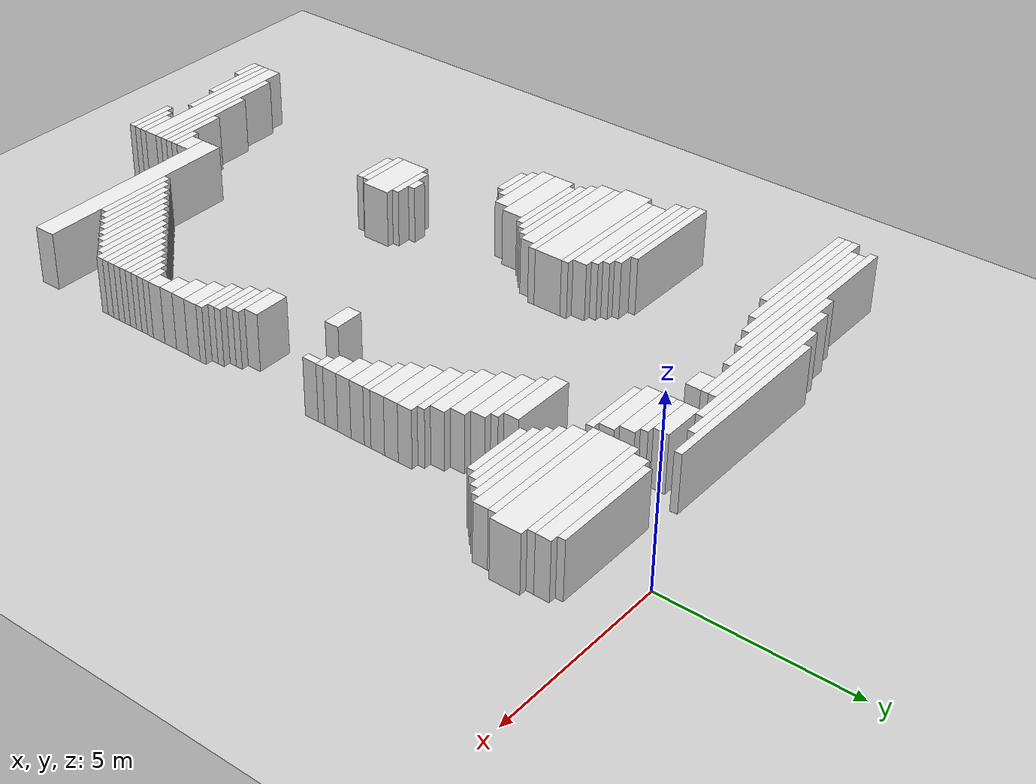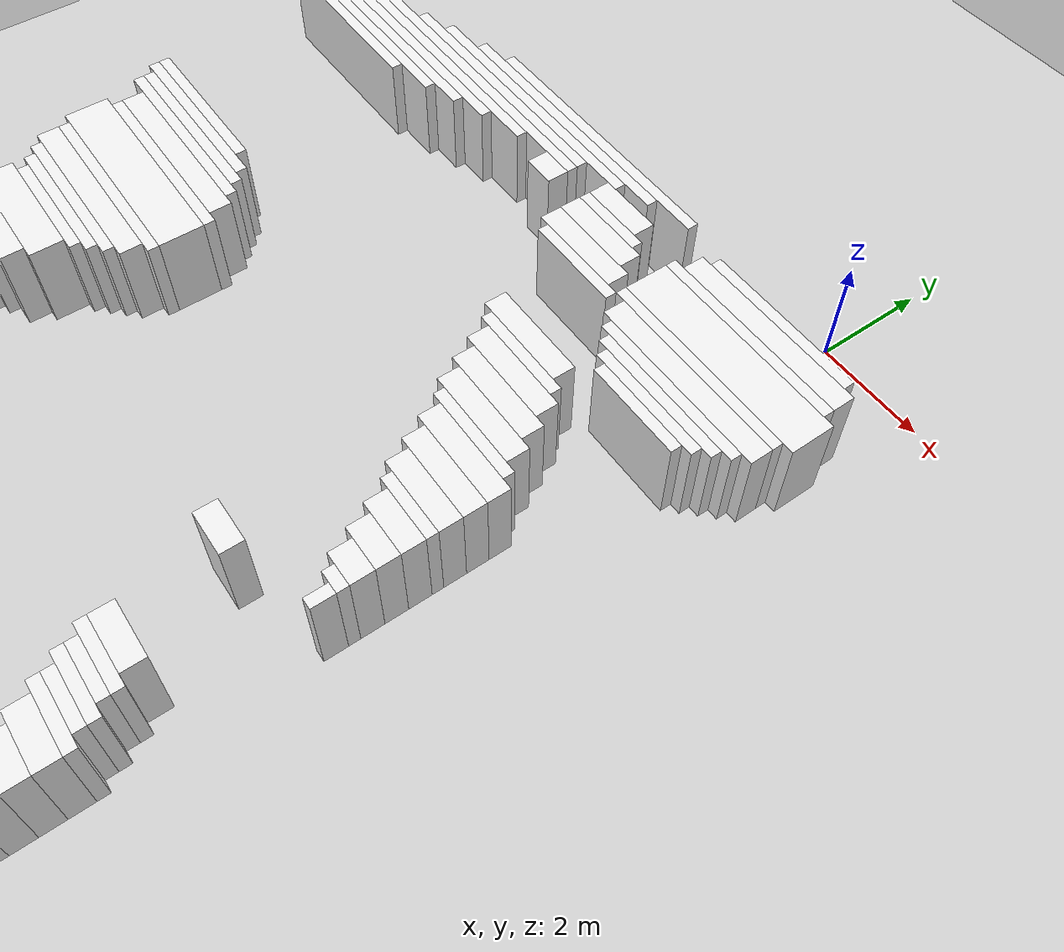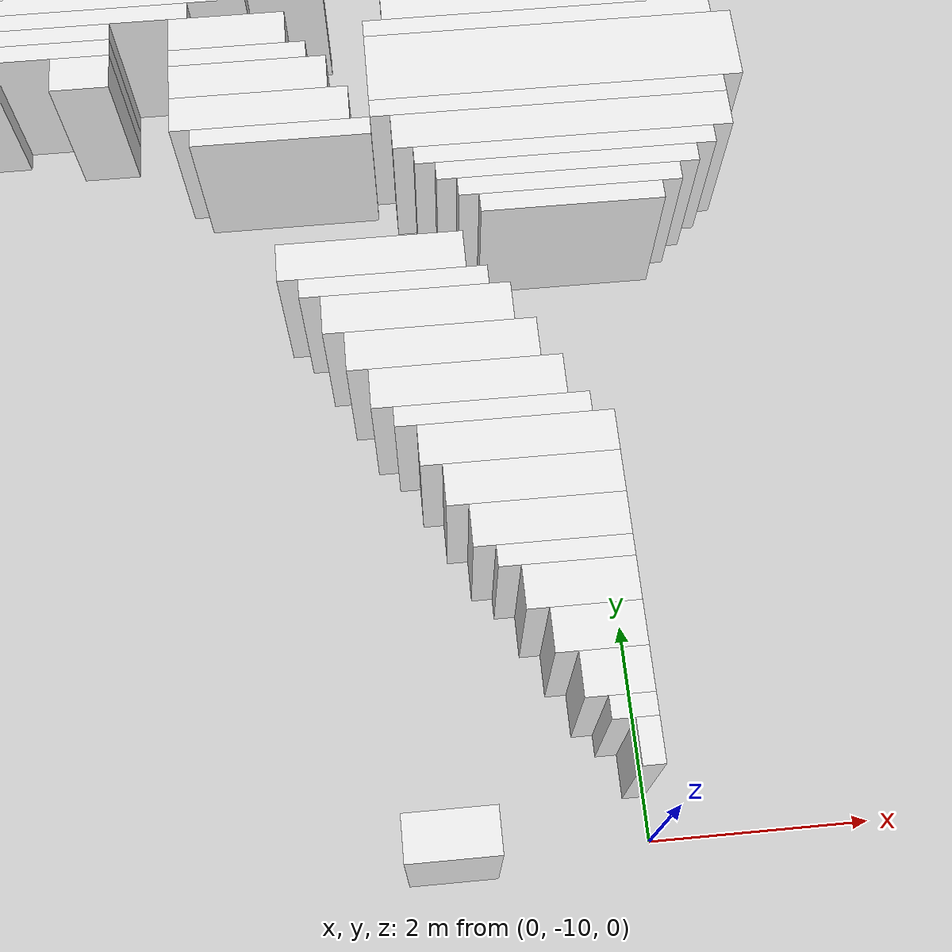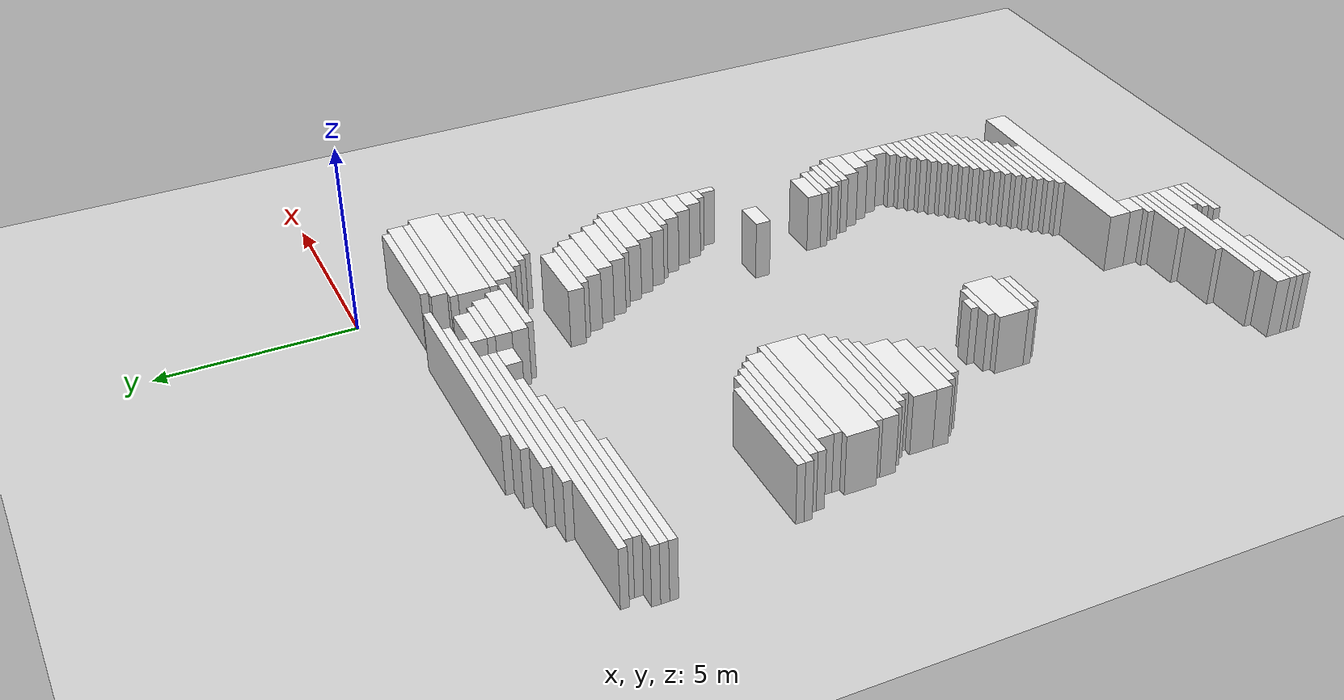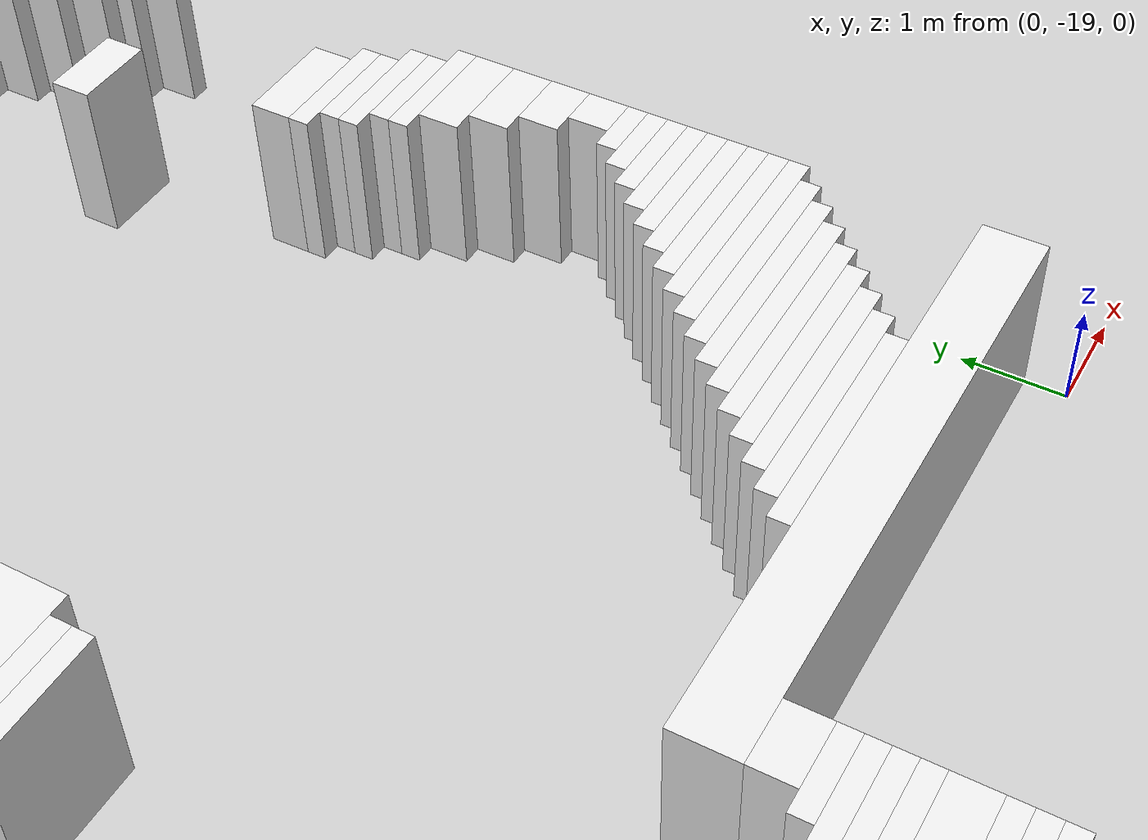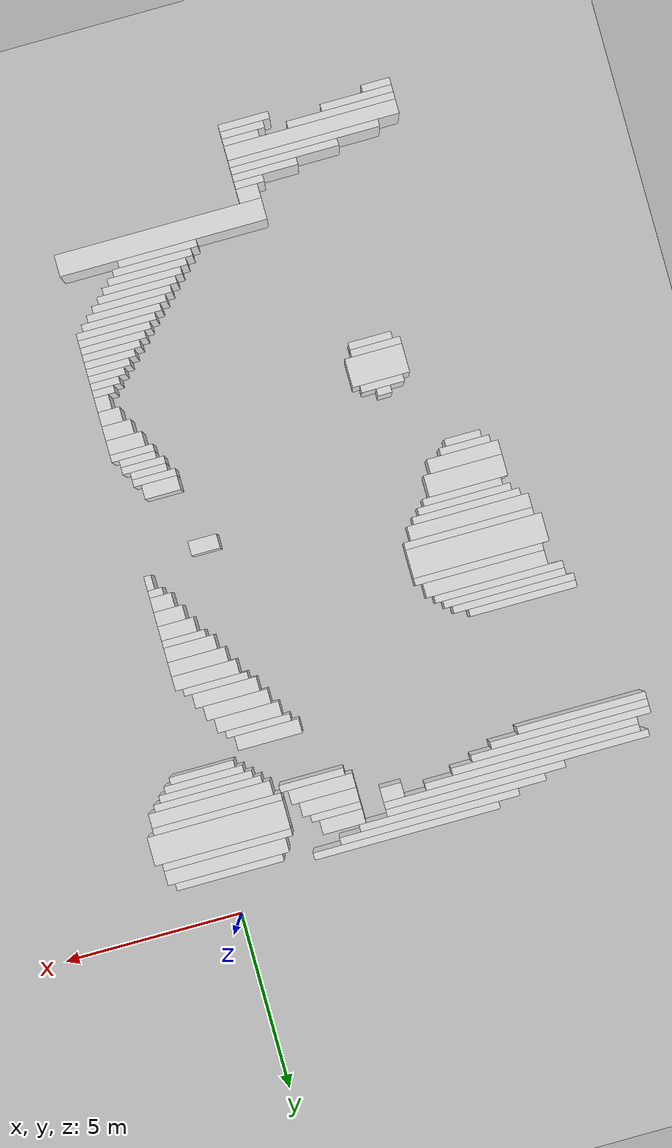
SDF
<sdf version="1.7">
 <world name="default">
  <model name="ground_plane">
   <static>1</static>
   <link name="link">
    <collision name="collision">
     <geometry><plane><normal>0 0 1</normal><size>120 120</size></plane></geometry>
    </collision>
    <visual name="visual">
     <geometry><plane><normal>0 0 1</normal><size>120 120</size></plane></geometry>
     <material>
      <script><uri>file://media/materials/scripts/gazebo.material</uri><name>Gazebo/Grey</name></script>
     </material>
    </visual>
   </link>
  </model>
  <model name="random_complex_03_model">
   <static>1</static>
   <link name="obs_1678">
    <pose>-5.0000 -1.1000 0.8000 0 0 0</pose>
    <collision name="obs_1678_col"><geometry><box><size>5.2000 0.2000 1.6000</size></box></geometry></collision>
    <visual name="obs_1678_vis">
     <geometry><box><size>5.2000 0.2000 1.6000</size></box></geometry>
     <material>
      <script><uri>file://media/materials/scripts/gazebo.material</uri><name>Gazebo/White</name></script>
     </material>
    </visual>
   </link>
   <link name="obs_1687">
    <pose>-5.7000 -1.3000 0.8000 0 0 0</pose>
    <collision name="obs_1687_col"><geometry><box><size>5.0000 0.2000 1.6000</size></box></geometry></collision>
    <visual name="obs_1687_vis">
     <geometry><box><size>5.0000 0.2000 1.6000</size></box></geometry>
     <material>
      <script><uri>file://media/materials/scripts/gazebo.material</uri><name>Gazebo/White</name></script>
     </material>
    </visual>
   </link>
   <link name="obs_1688">
    <pose>-0.1000 -1.3000 0.8000 0 0 0</pose>
    <collision name="obs_1688_col"><geometry><box><size>3.0000 0.2000 1.6000</size></box></geometry></collision>
    <visual name="obs_1688_vis">
     <geometry><box><size>3.0000 0.2000 1.6000</size></box></geometry>
     <material>
      <script><uri>file://media/materials/scripts/gazebo.material</uri><name>Gazebo/White</name></script>
     </material>
    </visual>
   </link>
   <link name="obs_1699">
    <pose>-6.4000 -1.5000 0.8000 0 0 0</pose>
    <collision name="obs_1699_col"><geometry><box><size>5.2000 0.2000 1.6000</size></box></geometry></collision>
    <visual name="obs_1699_vis">
     <geometry><box><size>5.2000 0.2000 1.6000</size></box></geometry>
     <material>
      <script><uri>file://media/materials/scripts/gazebo.material</uri><name>Gazebo/White</name></script>
     </material>
    </visual>
   </link>
   <link name="obs_1705">
    <pose>-0.1000 -1.6000 0.8000 0 0 0</pose>
    <collision name="obs_1705_col"><geometry><box><size>3.4000 0.4000 1.6000</size></box></geometry></collision>
    <visual name="obs_1705_vis">
     <geometry><box><size>3.4000 0.4000 1.6000</size></box></geometry>
     <material>
      <script><uri>file://media/materials/scripts/gazebo.material</uri><name>Gazebo/White</name></script>
     </material>
    </visual>
   </link>
   <link name="obs_1709">
    <pose>-7.1000 -1.7000 0.8000 0 0 0</pose>
    <collision name="obs_1709_col"><geometry><box><size>5.0000 0.2000 1.6000</size></box></geometry></collision>
    <visual name="obs_1709_vis">
     <geometry><box><size>5.0000 0.2000 1.6000</size></box></geometry>
     <material>
      <script><uri>file://media/materials/scripts/gazebo.material</uri><name>Gazebo/White</name></script>
     </material>
    </visual>
   </link>
   <link name="obs_1712">
    <pose>-3.4000 -1.8000 0.8000 0 0 0</pose>
    <collision name="obs_1712_col"><geometry><box><size>1.2000 0.4000 1.6000</size></box></geometry></collision>
    <visual name="obs_1712_vis">
     <geometry><box><size>1.2000 0.4000 1.6000</size></box></geometry>
     <material>
      <script><uri>file://media/materials/scripts/gazebo.material</uri><name>Gazebo/White</name></script>
     </material>
    </visual>
   </link>
   <link name="obs_1716">
    <pose>-8.3000 -1.9000 0.8000 0 0 0</pose>
    <collision name="obs_1716_col"><geometry><box><size>7.4000 0.2000 1.6000</size></box></geometry></collision>
    <visual name="obs_1716_vis">
     <geometry><box><size>7.4000 0.2000 1.6000</size></box></geometry>
     <material>
      <script><uri>file://media/materials/scripts/gazebo.material</uri><name>Gazebo/White</name></script>
     </material>
    </visual>
   </link>
   <link name="obs_1717">
    <pose>-0.2000 -1.9000 0.8000 0 0 0</pose>
    <collision name="obs_1717_col"><geometry><box><size>3.6000 0.2000 1.6000</size></box></geometry></collision>
    <visual name="obs_1717_vis">
     <geometry><box><size>3.6000 0.2000 1.6000</size></box></geometry>
     <material>
      <script><uri>file://media/materials/scripts/gazebo.material</uri><name>Gazebo/White</name></script>
     </material>
    </visual>
   </link>
   <link name="obs_1725">
    <pose>-8.8000 -2.1000 0.8000 0 0 0</pose>
    <collision name="obs_1725_col"><geometry><box><size>6.0000 0.2000 1.6000</size></box></geometry></collision>
    <visual name="obs_1725_vis">
     <geometry><box><size>6.0000 0.2000 1.6000</size></box></geometry>
     <material>
      <script><uri>file://media/materials/scripts/gazebo.material</uri><name>Gazebo/White</name></script>
     </material>
    </visual>
   </link>
   <link name="obs_1726">
    <pose>-3.3000 -2.1000 0.8000 0 0 0</pose>
    <collision name="obs_1726_col"><geometry><box><size>1.4000 0.2000 1.6000</size></box></geometry></collision>
    <visual name="obs_1726_vis">
     <geometry><box><size>1.4000 0.2000 1.6000</size></box></geometry>
     <material>
      <script><uri>file://media/materials/scripts/gazebo.material</uri><name>Gazebo/White</name></script>
     </material>
    </visual>
   </link>
   <link name="obs_1731">
    <pose>-4.9000 -2.2000 0.8000 0 0 0</pose>
    <collision name="obs_1731_col"><geometry><box><size>0.6000 0.4000 1.6000</size></box></geometry></collision>
    <visual name="obs_1731_vis">
     <geometry><box><size>0.6000 0.4000 1.6000</size></box></geometry>
     <material>
      <script><uri>file://media/materials/scripts/gazebo.material</uri><name>Gazebo/White</name></script>
     </material>
    </visual>
   </link>
   <link name="obs_1735">
    <pose>-9.2000 -2.3000 0.8000 0 0 0</pose>
    <collision name="obs_1735_col"><geometry><box><size>5.2000 0.2000 1.6000</size></box></geometry></collision>
    <visual name="obs_1735_vis">
     <geometry><box><size>5.2000 0.2000 1.6000</size></box></geometry>
     <material>
      <script><uri>file://media/materials/scripts/gazebo.material</uri><name>Gazebo/White</name></script>
     </material>
    </visual>
   </link>
   <link name="obs_1741">
    <pose>-3.2000 -2.4000 0.8000 0 0 0</pose>
    <collision name="obs_1741_col"><geometry><box><size>1.6000 0.4000 1.6000</size></box></geometry></collision>
    <visual name="obs_1741_vis">
     <geometry><box><size>1.6000 0.4000 1.6000</size></box></geometry>
     <material>
      <script><uri>file://media/materials/scripts/gazebo.material</uri><name>Gazebo/White</name></script>
     </material>
    </visual>
   </link>
   <link name="obs_1744">
    <pose>-9.7000 -2.5000 0.8000 0 0 0</pose>
    <collision name="obs_1744_col"><geometry><box><size>5.0000 0.2000 1.6000</size></box></geometry></collision>
    <visual name="obs_1744_vis">
     <geometry><box><size>5.0000 0.2000 1.6000</size></box></geometry>
     <material>
      <script><uri>file://media/materials/scripts/gazebo.material</uri><name>Gazebo/White</name></script>
     </material>
    </visual>
   </link>
   <link name="obs_1749">
    <pose>-0.1000 -2.4000 0.8000 0 0 0</pose>
    <collision name="obs_1749_col"><geometry><box><size>3.8000 0.8000 1.6000</size></box></geometry></collision>
    <visual name="obs_1749_vis">
     <geometry><box><size>3.8000 0.8000 1.6000</size></box></geometry>
     <material>
      <script><uri>file://media/materials/scripts/gazebo.material</uri><name>Gazebo/White</name></script>
     </material>
    </visual>
   </link>
   <link name="obs_1752">
    <pose>-10.0000 -2.7000 0.8000 0 0 0</pose>
    <collision name="obs_1752_col"><geometry><box><size>4.4000 0.2000 1.6000</size></box></geometry></collision>
    <visual name="obs_1752_vis">
     <geometry><box><size>4.4000 0.2000 1.6000</size></box></geometry>
     <material>
      <script><uri>file://media/materials/scripts/gazebo.material</uri><name>Gazebo/White</name></script>
     </material>
    </visual>
   </link>
   <link name="obs_1757">
    <pose>-3.1000 -2.8000 0.8000 0 0 0</pose>
    <collision name="obs_1757_col"><geometry><box><size>1.8000 0.4000 1.6000</size></box></geometry></collision>
    <visual name="obs_1757_vis">
     <geometry><box><size>1.8000 0.4000 1.6000</size></box></geometry>
     <material>
      <script><uri>file://media/materials/scripts/gazebo.material</uri><name>Gazebo/White</name></script>
     </material>
    </visual>
   </link>
   <link name="obs_1760">
    <pose>-10.4000 -2.9000 0.8000 0 0 0</pose>
    <collision name="obs_1760_col"><geometry><box><size>3.6000 0.2000 1.6000</size></box></geometry></collision>
    <visual name="obs_1760_vis">
     <geometry><box><size>3.6000 0.2000 1.6000</size></box></geometry>
     <material>
      <script><uri>file://media/materials/scripts/gazebo.material</uri><name>Gazebo/White</name></script>
     </material>
    </visual>
   </link>
   <link name="obs_1761">
    <pose>-0.2000 -2.9000 0.8000 0 0 0</pose>
    <collision name="obs_1761_col"><geometry><box><size>3.6000 0.2000 1.6000</size></box></geometry></collision>
    <visual name="obs_1761_vis">
     <geometry><box><size>3.6000 0.2000 1.6000</size></box></geometry>
     <material>
      <script><uri>file://media/materials/scripts/gazebo.material</uri><name>Gazebo/White</name></script>
     </material>
    </visual>
   </link>
   <link name="obs_1770">
    <pose>-2.9000 -3.1000 0.8000 0 0 0</pose>
    <collision name="obs_1770_col"><geometry><box><size>1.8000 0.2000 1.6000</size></box></geometry></collision>
    <visual name="obs_1770_vis">
     <geometry><box><size>1.8000 0.2000 1.6000</size></box></geometry>
     <material>
      <script><uri>file://media/materials/scripts/gazebo.material</uri><name>Gazebo/White</name></script>
     </material>
    </visual>
   </link>
   <link name="obs_1773">
    <pose>-0.1000 -3.2000 0.8000 0 0 0</pose>
    <collision name="obs_1773_col"><geometry><box><size>3.4000 0.4000 1.6000</size></box></geometry></collision>
    <visual name="obs_1773_vis">
     <geometry><box><size>3.4000 0.4000 1.6000</size></box></geometry>
     <material>
      <script><uri>file://media/materials/scripts/gazebo.material</uri><name>Gazebo/White</name></script>
     </material>
    </visual>
   </link>
   <link name="obs_1776">
    <pose>-0.1000 -3.5000 0.8000 0 0 0</pose>
    <collision name="obs_1776_col"><geometry><box><size>3.0000 0.2000 1.6000</size></box></geometry></collision>
    <visual name="obs_1776_vis">
     <geometry><box><size>3.0000 0.2000 1.6000</size></box></geometry>
     <material>
      <script><uri>file://media/materials/scripts/gazebo.material</uri><name>Gazebo/White</name></script>
     </material>
    </visual>
   </link>
   <link name="obs_1777">
    <pose>-0.1000 -3.7000 0.8000 0 0 0</pose>
    <collision name="obs_1777_col"><geometry><box><size>2.6000 0.2000 1.6000</size></box></geometry></collision>
    <visual name="obs_1777_vis">
     <geometry><box><size>2.6000 0.2000 1.6000</size></box></geometry>
     <material>
      <script><uri>file://media/materials/scripts/gazebo.material</uri><name>Gazebo/White</name></script>
     </material>
    </visual>
   </link>
   <link name="obs_1782">
    <pose>-0.1000 -3.9000 0.8000 0 0 0</pose>
    <collision name="obs_1782_col"><geometry><box><size>2.2000 0.2000 1.6000</size></box></geometry></collision>
    <visual name="obs_1782_vis">
     <geometry><box><size>2.2000 0.2000 1.6000</size></box></geometry>
     <material>
      <script><uri>file://media/materials/scripts/gazebo.material</uri><name>Gazebo/White</name></script>
     </material>
    </visual>
   </link>
   <link name="obs_1785">
    <pose>-0.1000 -4.1000 0.8000 0 0 0</pose>
    <collision name="obs_1785_col"><geometry><box><size>1.8000 0.2000 1.6000</size></box></geometry></collision>
    <visual name="obs_1785_vis">
     <geometry><box><size>1.8000 0.2000 1.6000</size></box></geometry>
     <material>
      <script><uri>file://media/materials/scripts/gazebo.material</uri><name>Gazebo/White</name></script>
     </material>
    </visual>
   </link>
   <link name="obs_1798">
    <pose>-2.1000 -4.6000 0.8000 0 0 0</pose>
    <collision name="obs_1798_col"><geometry><box><size>1.8000 0.4000 1.6000</size></box></geometry></collision>
    <visual name="obs_1798_vis">
     <geometry><box><size>1.8000 0.4000 1.6000</size></box></geometry>
     <material>
      <script><uri>file://media/materials/scripts/gazebo.material</uri><name>Gazebo/White</name></script>
     </material>
    </visual>
   </link>
   <link name="obs_1808">
    <pose>-1.9000 -4.9000 0.8000 0 0 0</pose>
    <collision name="obs_1808_col"><geometry><box><size>1.8000 0.2000 1.6000</size></box></geometry></collision>
    <visual name="obs_1808_vis">
     <geometry><box><size>1.8000 0.2000 1.6000</size></box></geometry>
     <material>
      <script><uri>file://media/materials/scripts/gazebo.material</uri><name>Gazebo/White</name></script>
     </material>
    </visual>
   </link>
   <link name="obs_1816">
    <pose>-1.7000 -5.2000 0.8000 0 0 0</pose>
    <collision name="obs_1816_col"><geometry><box><size>1.8000 0.4000 1.6000</size></box></geometry></collision>
    <visual name="obs_1816_vis">
     <geometry><box><size>1.8000 0.4000 1.6000</size></box></geometry>
     <material>
      <script><uri>file://media/materials/scripts/gazebo.material</uri><name>Gazebo/White</name></script>
     </material>
    </visual>
   </link>
   <link name="obs_1825">
    <pose>-1.5000 -5.6000 0.8000 0 0 0</pose>
    <collision name="obs_1825_col"><geometry><box><size>1.8000 0.4000 1.6000</size></box></geometry></collision>
    <visual name="obs_1825_vis">
     <geometry><box><size>1.8000 0.4000 1.6000</size></box></geometry>
     <material>
      <script><uri>file://media/materials/scripts/gazebo.material</uri><name>Gazebo/White</name></script>
     </material>
    </visual>
   </link>
   <link name="obs_1836">
    <pose>-1.3000 -6.0000 0.8000 0 0 0</pose>
    <collision name="obs_1836_col"><geometry><box><size>1.8000 0.4000 1.6000</size></box></geometry></collision>
    <visual name="obs_1836_vis">
     <geometry><box><size>1.8000 0.4000 1.6000</size></box></geometry>
     <material>
      <script><uri>file://media/materials/scripts/gazebo.material</uri><name>Gazebo/White</name></script>
     </material>
    </visual>
   </link>
   <link name="obs_1838">
    <pose>-9.7000 -6.3000 0.8000 0 0 0</pose>
    <collision name="obs_1838_col"><geometry><box><size>3.0000 0.2000 1.6000</size></box></geometry></collision>
    <visual name="obs_1838_vis">
     <geometry><box><size>3.0000 0.2000 1.6000</size></box></geometry>
     <material>
      <script><uri>file://media/materials/scripts/gazebo.material</uri><name>Gazebo/White</name></script>
     </material>
    </visual>
   </link>
   <link name="obs_1839">
    <pose>-1.1000 -6.3000 0.8000 0 0 0</pose>
    <collision name="obs_1839_col"><geometry><box><size>1.8000 0.2000 1.6000</size></box></geometry></collision>
    <visual name="obs_1839_vis">
     <geometry><box><size>1.8000 0.2000 1.6000</size></box></geometry>
     <material>
      <script><uri>file://media/materials/scripts/gazebo.material</uri><name>Gazebo/White</name></script>
     </material>
    </visual>
   </link>
   <link name="obs_1842">
    <pose>-9.5000 -6.5000 0.8000 0 0 0</pose>
    <collision name="obs_1842_col"><geometry><box><size>3.4000 0.2000 1.6000</size></box></geometry></collision>
    <visual name="obs_1842_vis">
     <geometry><box><size>3.4000 0.2000 1.6000</size></box></geometry>
     <material>
      <script><uri>file://media/materials/scripts/gazebo.material</uri><name>Gazebo/White</name></script>
     </material>
    </visual>
   </link>
   <link name="obs_1844">
    <pose>-0.9000 -6.6000 0.8000 0 0 0</pose>
    <collision name="obs_1844_col"><geometry><box><size>1.8000 0.4000 1.6000</size></box></geometry></collision>
    <visual name="obs_1844_vis">
     <geometry><box><size>1.8000 0.4000 1.6000</size></box></geometry>
     <material>
      <script><uri>file://media/materials/scripts/gazebo.material</uri><name>Gazebo/White</name></script>
     </material>
    </visual>
   </link>
   <link name="obs_1847">
    <pose>-9.3000 -6.7000 0.8000 0 0 0</pose>
    <collision name="obs_1847_col"><geometry><box><size>3.4000 0.2000 1.6000</size></box></geometry></collision>
    <visual name="obs_1847_vis">
     <geometry><box><size>3.4000 0.2000 1.6000</size></box></geometry>
     <material>
      <script><uri>file://media/materials/scripts/gazebo.material</uri><name>Gazebo/White</name></script>
     </material>
    </visual>
   </link>
   <link name="obs_1857">
    <pose>-9.2000 -6.9000 0.8000 0 0 0</pose>
    <collision name="obs_1857_col"><geometry><box><size>3.6000 0.2000 1.6000</size></box></geometry></collision>
    <visual name="obs_1857_vis">
     <geometry><box><size>3.6000 0.2000 1.6000</size></box></geometry>
     <material>
      <script><uri>file://media/materials/scripts/gazebo.material</uri><name>Gazebo/White</name></script>
     </material>
    </visual>
   </link>
   <link name="obs_1858">
    <pose>-0.8000 -7.0000 0.8000 0 0 0</pose>
    <collision name="obs_1858_col"><geometry><box><size>1.6000 0.4000 1.6000</size></box></geometry></collision>
    <visual name="obs_1858_vis">
     <geometry><box><size>1.6000 0.4000 1.6000</size></box></geometry>
     <material>
      <script><uri>file://media/materials/scripts/gazebo.material</uri><name>Gazebo/White</name></script>
     </material>
    </visual>
   </link>
   <link name="obs_1865">
    <pose>-8.9000 -7.2000 0.8000 0 0 0</pose>
    <collision name="obs_1865_col"><geometry><box><size>3.4000 0.4000 1.6000</size></box></geometry></collision>
    <visual name="obs_1865_vis">
     <geometry><box><size>3.4000 0.4000 1.6000</size></box></geometry>
     <material>
      <script><uri>file://media/materials/scripts/gazebo.material</uri><name>Gazebo/White</name></script>
     </material>
    </visual>
   </link>
   <link name="obs_1869">
    <pose>-0.7000 -7.4000 0.8000 0 0 0</pose>
    <collision name="obs_1869_col"><geometry><box><size>1.4000 0.4000 1.6000</size></box></geometry></collision>
    <visual name="obs_1869_vis">
     <geometry><box><size>1.4000 0.4000 1.6000</size></box></geometry>
     <material>
      <script><uri>file://media/materials/scripts/gazebo.material</uri><name>Gazebo/White</name></script>
     </material>
    </visual>
   </link>
   <link name="obs_1872">
    <pose>-8.8000 -7.5000 0.8000 0 0 0</pose>
    <collision name="obs_1872_col"><geometry><box><size>3.6000 0.2000 1.6000</size></box></geometry></collision>
    <visual name="obs_1872_vis">
     <geometry><box><size>3.6000 0.2000 1.6000</size></box></geometry>
     <material>
      <script><uri>file://media/materials/scripts/gazebo.material</uri><name>Gazebo/White</name></script>
     </material>
    </visual>
   </link>
   <link name="obs_1880">
    <pose>-0.6000 -7.7000 0.8000 0 0 0</pose>
    <collision name="obs_1880_col"><geometry><box><size>1.2000 0.2000 1.6000</size></box></geometry></collision>
    <visual name="obs_1880_vis">
     <geometry><box><size>1.2000 0.2000 1.6000</size></box></geometry>
     <material>
      <script><uri>file://media/materials/scripts/gazebo.material</uri><name>Gazebo/White</name></script>
     </material>
    </visual>
   </link>
   <link name="obs_1891">
    <pose>-0.5000 -8.0000 0.8000 0 0 0</pose>
    <collision name="obs_1891_col"><geometry><box><size>1.0000 0.4000 1.6000</size></box></geometry></collision>
    <visual name="obs_1891_vis">
     <geometry><box><size>1.0000 0.4000 1.6000</size></box></geometry>
     <material>
      <script><uri>file://media/materials/scripts/gazebo.material</uri><name>Gazebo/White</name></script>
     </material>
    </visual>
   </link>
   <link name="obs_1895">
    <pose>-8.9000 -8.0000 0.8000 0 0 0</pose>
    <collision name="obs_1895_col"><geometry><box><size>3.8000 0.8000 1.6000</size></box></geometry></collision>
    <visual name="obs_1895_vis">
     <geometry><box><size>3.8000 0.8000 1.6000</size></box></geometry>
     <material>
      <script><uri>file://media/materials/scripts/gazebo.material</uri><name>Gazebo/White</name></script>
     </material>
    </visual>
   </link>
   <link name="obs_1901">
    <pose>-0.4000 -8.4000 0.8000 0 0 0</pose>
    <collision name="obs_1901_col"><geometry><box><size>0.8000 0.4000 1.6000</size></box></geometry></collision>
    <visual name="obs_1901_vis">
     <geometry><box><size>0.8000 0.4000 1.6000</size></box></geometry>
     <material>
      <script><uri>file://media/materials/scripts/gazebo.material</uri><name>Gazebo/White</name></script>
     </material>
    </visual>
   </link>
   <link name="obs_1903">
    <pose>-8.8000 -8.5000 0.8000 0 0 0</pose>
    <collision name="obs_1903_col"><geometry><box><size>3.6000 0.2000 1.6000</size></box></geometry></collision>
    <visual name="obs_1903_vis">
     <geometry><box><size>3.6000 0.2000 1.6000</size></box></geometry>
     <material>
      <script><uri>file://media/materials/scripts/gazebo.material</uri><name>Gazebo/White</name></script>
     </material>
    </visual>
   </link>
   <link name="obs_1914">
    <pose>-8.9000 -8.8000 0.8000 0 0 0</pose>
    <collision name="obs_1914_col"><geometry><box><size>3.4000 0.4000 1.6000</size></box></geometry></collision>
    <visual name="obs_1914_vis">
     <geometry><box><size>3.4000 0.4000 1.6000</size></box></geometry>
     <material>
      <script><uri>file://media/materials/scripts/gazebo.material</uri><name>Gazebo/White</name></script>
     </material>
    </visual>
   </link>
   <link name="obs_1915">
    <pose>-0.3000 -8.8000 0.8000 0 0 0</pose>
    <collision name="obs_1915_col"><geometry><box><size>0.6000 0.4000 1.6000</size></box></geometry></collision>
    <visual name="obs_1915_vis">
     <geometry><box><size>0.6000 0.4000 1.6000</size></box></geometry>
     <material>
      <script><uri>file://media/materials/scripts/gazebo.material</uri><name>Gazebo/White</name></script>
     </material>
    </visual>
   </link>
   <link name="obs_1925">
    <pose>-8.9000 -9.1000 0.8000 0 0 0</pose>
    <collision name="obs_1925_col"><geometry><box><size>3.0000 0.2000 1.6000</size></box></geometry></collision>
    <visual name="obs_1925_vis">
     <geometry><box><size>3.0000 0.2000 1.6000</size></box></geometry>
     <material>
      <script><uri>file://media/materials/scripts/gazebo.material</uri><name>Gazebo/White</name></script>
     </material>
    </visual>
   </link>
   <link name="obs_1926">
    <pose>-0.2000 -9.1000 0.8000 0 0 0</pose>
    <collision name="obs_1926_col"><geometry><box><size>0.4000 0.2000 1.6000</size></box></geometry></collision>
    <visual name="obs_1926_vis">
     <geometry><box><size>0.4000 0.2000 1.6000</size></box></geometry>
     <material>
      <script><uri>file://media/materials/scripts/gazebo.material</uri><name>Gazebo/White</name></script>
     </material>
    </visual>
   </link>
   <link name="obs_1934">
    <pose>-8.9000 -9.3000 0.8000 0 0 0</pose>
    <collision name="obs_1934_col"><geometry><box><size>2.6000 0.2000 1.6000</size></box></geometry></collision>
    <visual name="obs_1934_vis">
     <geometry><box><size>2.6000 0.2000 1.6000</size></box></geometry>
     <material>
      <script><uri>file://media/materials/scripts/gazebo.material</uri><name>Gazebo/White</name></script>
     </material>
    </visual>
   </link>
   <link name="obs_1938">
    <pose>-0.1000 -9.4000 0.8000 0 0 0</pose>
    <collision name="obs_1938_col"><geometry><box><size>0.2000 0.4000 1.6000</size></box></geometry></collision>
    <visual name="obs_1938_vis">
     <geometry><box><size>0.2000 0.4000 1.6000</size></box></geometry>
     <material>
      <script><uri>file://media/materials/scripts/gazebo.material</uri><name>Gazebo/White</name></script>
     </material>
    </visual>
   </link>
   <link name="obs_1942">
    <pose>-8.9000 -9.5000 0.8000 0 0 0</pose>
    <collision name="obs_1942_col"><geometry><box><size>2.2000 0.2000 1.6000</size></box></geometry></collision>
    <visual name="obs_1942_vis">
     <geometry><box><size>2.2000 0.2000 1.6000</size></box></geometry>
     <material>
      <script><uri>file://media/materials/scripts/gazebo.material</uri><name>Gazebo/White</name></script>
     </material>
    </visual>
   </link>
   <link name="obs_1963">
    <pose>-9.1000 -9.9000 0.8000 0 0 0</pose>
    <collision name="obs_1963_col"><geometry><box><size>2.2000 0.6000 1.6000</size></box></geometry></collision>
    <visual name="obs_1963_vis">
     <geometry><box><size>2.2000 0.6000 1.6000</size></box></geometry>
     <material>
      <script><uri>file://media/materials/scripts/gazebo.material</uri><name>Gazebo/White</name></script>
     </material>
    </visual>
   </link>
   <link name="obs_1964">
    <pose>-1.8000 -10.0000 0.8000 0 0 0</pose>
    <collision name="obs_1964_col"><geometry><box><size>0.8000 0.4000 1.6000</size></box></geometry></collision>
    <visual name="obs_1964_vis">
     <geometry><box><size>0.8000 0.4000 1.6000</size></box></geometry>
     <material>
      <script><uri>file://media/materials/scripts/gazebo.material</uri><name>Gazebo/White</name></script>
     </material>
    </visual>
   </link>
   <link name="obs_1973">
    <pose>-9.2000 -10.4000 0.8000 0 0 0</pose>
    <collision name="obs_1973_col"><geometry><box><size>2.0000 0.4000 1.6000</size></box></geometry></collision>
    <visual name="obs_1973_vis">
     <geometry><box><size>2.0000 0.4000 1.6000</size></box></geometry>
     <material>
      <script><uri>file://media/materials/scripts/gazebo.material</uri><name>Gazebo/White</name></script>
     </material>
    </visual>
   </link>
   <link name="obs_1976">
    <pose>-9.3000 -10.7000 0.8000 0 0 0</pose>
    <collision name="obs_1976_col"><geometry><box><size>1.4000 0.2000 1.6000</size></box></geometry></collision>
    <visual name="obs_1976_vis">
     <geometry><box><size>1.4000 0.2000 1.6000</size></box></geometry>
     <material>
      <script><uri>file://media/materials/scripts/gazebo.material</uri><name>Gazebo/White</name></script>
     </material>
    </visual>
   </link>
   <link name="obs_1980">
    <pose>-9.3000 -10.9000 0.8000 0 0 0</pose>
    <collision name="obs_1980_col"><geometry><box><size>1.0000 0.2000 1.6000</size></box></geometry></collision>
    <visual name="obs_1980_vis">
     <geometry><box><size>1.0000 0.2000 1.6000</size></box></geometry>
     <material>
      <script><uri>file://media/materials/scripts/gazebo.material</uri><name>Gazebo/White</name></script>
     </material>
    </visual>
   </link>
   <link name="obs_1998">
    <pose>-1.1000 -11.8000 0.8000 0 0 0</pose>
    <collision name="obs_1998_col"><geometry><box><size>1.0000 0.4000 1.6000</size></box></geometry></collision>
    <visual name="obs_1998_vis">
     <geometry><box><size>1.0000 0.4000 1.6000</size></box></geometry>
     <material>
      <script><uri>file://media/materials/scripts/gazebo.material</uri><name>Gazebo/White</name></script>
     </material>
    </visual>
   </link>
   <link name="obs_2011">
    <pose>-1.0000 -12.1000 0.8000 0 0 0</pose>
    <collision name="obs_2011_col"><geometry><box><size>1.2000 0.2000 1.6000</size></box></geometry></collision>
    <visual name="obs_2011_vis">
     <geometry><box><size>1.2000 0.2000 1.6000</size></box></geometry>
     <material>
      <script><uri>file://media/materials/scripts/gazebo.material</uri><name>Gazebo/White</name></script>
     </material>
    </visual>
   </link>
   <link name="obs_2019">
    <pose>-0.9000 -12.3000 0.8000 0 0 0</pose>
    <collision name="obs_2019_col"><geometry><box><size>1.0000 0.2000 1.6000</size></box></geometry></collision>
    <visual name="obs_2019_vis">
     <geometry><box><size>1.0000 0.2000 1.6000</size></box></geometry>
     <material>
      <script><uri>file://media/materials/scripts/gazebo.material</uri><name>Gazebo/White</name></script>
     </material>
    </visual>
   </link>
   <link name="obs_2027">
    <pose>-0.8000 -12.5000 0.8000 0 0 0</pose>
    <collision name="obs_2027_col"><geometry><box><size>1.2000 0.2000 1.6000</size></box></geometry></collision>
    <visual name="obs_2027_vis">
     <geometry><box><size>1.2000 0.2000 1.6000</size></box></geometry>
     <material>
      <script><uri>file://media/materials/scripts/gazebo.material</uri><name>Gazebo/White</name></script>
     </material>
    </visual>
   </link>
   <link name="obs_2038">
    <pose>-7.6000 -12.7000 0.8000 0 0 0</pose>
    <collision name="obs_2038_col"><geometry><box><size>0.4000 0.2000 1.6000</size></box></geometry></collision>
    <visual name="obs_2038_vis">
     <geometry><box><size>0.4000 0.2000 1.6000</size></box></geometry>
     <material>
      <script><uri>file://media/materials/scripts/gazebo.material</uri><name>Gazebo/White</name></script>
     </material>
    </visual>
   </link>
   <link name="obs_2039">
    <pose>-0.7000 -12.7000 0.8000 0 0 0</pose>
    <collision name="obs_2039_col"><geometry><box><size>1.0000 0.2000 1.6000</size></box></geometry></collision>
    <visual name="obs_2039_vis">
     <geometry><box><size>1.0000 0.2000 1.6000</size></box></geometry>
     <material>
      <script><uri>file://media/materials/scripts/gazebo.material</uri><name>Gazebo/White</name></script>
     </material>
    </visual>
   </link>
   <link name="obs_2046">
    <pose>-7.6000 -12.9000 0.8000 0 0 0</pose>
    <collision name="obs_2046_col"><geometry><box><size>1.2000 0.2000 1.6000</size></box></geometry></collision>
    <visual name="obs_2046_vis">
     <geometry><box><size>1.2000 0.2000 1.6000</size></box></geometry>
     <material>
      <script><uri>file://media/materials/scripts/gazebo.material</uri><name>Gazebo/White</name></script>
     </material>
    </visual>
   </link>
   <link name="obs_2047">
    <pose>-0.6000 -12.9000 0.8000 0 0 0</pose>
    <collision name="obs_2047_col"><geometry><box><size>1.2000 0.2000 1.6000</size></box></geometry></collision>
    <visual name="obs_2047_vis">
     <geometry><box><size>1.2000 0.2000 1.6000</size></box></geometry>
     <material>
      <script><uri>file://media/materials/scripts/gazebo.material</uri><name>Gazebo/White</name></script>
     </material>
    </visual>
   </link>
   <link name="obs_2059">
    <pose>-0.5000 -13.2000 0.8000 0 0 0</pose>
    <collision name="obs_2059_col"><geometry><box><size>1.0000 0.4000 1.6000</size></box></geometry></collision>
    <visual name="obs_2059_vis">
     <geometry><box><size>1.0000 0.4000 1.6000</size></box></geometry>
     <material>
      <script><uri>file://media/materials/scripts/gazebo.material</uri><name>Gazebo/White</name></script>
     </material>
    </visual>
   </link>
   <link name="obs_2070">
    <pose>-7.6000 -13.4000 0.8000 0 0 0</pose>
    <collision name="obs_2070_col"><geometry><box><size>1.6000 0.8000 1.6000</size></box></geometry></collision>
    <visual name="obs_2070_vis">
     <geometry><box><size>1.6000 0.8000 1.6000</size></box></geometry>
     <material>
      <script><uri>file://media/materials/scripts/gazebo.material</uri><name>Gazebo/White</name></script>
     </material>
    </visual>
   </link>
   <link name="obs_2071">
    <pose>-0.4000 -13.6000 0.8000 0 0 0</pose>
    <collision name="obs_2071_col"><geometry><box><size>0.8000 0.4000 1.6000</size></box></geometry></collision>
    <visual name="obs_2071_vis">
     <geometry><box><size>0.8000 0.4000 1.6000</size></box></geometry>
     <material>
      <script><uri>file://media/materials/scripts/gazebo.material</uri><name>Gazebo/White</name></script>
     </material>
    </visual>
   </link>
   <link name="obs_2084">
    <pose>-7.7000 -13.9000 0.8000 0 0 0</pose>
    <collision name="obs_2084_col"><geometry><box><size>1.4000 0.2000 1.6000</size></box></geometry></collision>
    <visual name="obs_2084_vis">
     <geometry><box><size>1.4000 0.2000 1.6000</size></box></geometry>
     <material>
      <script><uri>file://media/materials/scripts/gazebo.material</uri><name>Gazebo/White</name></script>
     </material>
    </visual>
   </link>
   <link name="obs_2088">
    <pose>-0.3000 -14.0000 0.8000 0 0 0</pose>
    <collision name="obs_2088_col"><geometry><box><size>0.6000 0.4000 1.6000</size></box></geometry></collision>
    <visual name="obs_2088_vis">
     <geometry><box><size>0.6000 0.4000 1.6000</size></box></geometry>
     <material>
      <script><uri>file://media/materials/scripts/gazebo.material</uri><name>Gazebo/White</name></script>
     </material>
    </visual>
   </link>
   <link name="obs_2092">
    <pose>-7.6000 -14.1000 0.8000 0 0 0</pose>
    <collision name="obs_2092_col"><geometry><box><size>1.2000 0.2000 1.6000</size></box></geometry></collision>
    <visual name="obs_2092_vis">
     <geometry><box><size>1.2000 0.2000 1.6000</size></box></geometry>
     <material>
      <script><uri>file://media/materials/scripts/gazebo.material</uri><name>Gazebo/White</name></script>
     </material>
    </visual>
   </link>
   <link name="obs_2104">
    <pose>-0.2000 -14.4000 0.8000 0 0 0</pose>
    <collision name="obs_2104_col"><geometry><box><size>0.4000 0.4000 1.6000</size></box></geometry></collision>
    <visual name="obs_2104_vis">
     <geometry><box><size>0.4000 0.4000 1.6000</size></box></geometry>
     <material>
      <script><uri>file://media/materials/scripts/gazebo.material</uri><name>Gazebo/White</name></script>
     </material>
    </visual>
   </link>
   <link name="obs_2116">
    <pose>-0.3000 -14.7000 0.8000 0 0 0</pose>
    <collision name="obs_2116_col"><geometry><box><size>0.6000 0.2000 1.6000</size></box></geometry></collision>
    <visual name="obs_2116_vis">
     <geometry><box><size>0.6000 0.2000 1.6000</size></box></geometry>
     <material>
      <script><uri>file://media/materials/scripts/gazebo.material</uri><name>Gazebo/White</name></script>
     </material>
    </visual>
   </link>
   <link name="obs_2121">
    <pose>-0.4000 -14.9000 0.8000 0 0 0</pose>
    <collision name="obs_2121_col"><geometry><box><size>0.8000 0.2000 1.6000</size></box></geometry></collision>
    <visual name="obs_2121_vis">
     <geometry><box><size>0.8000 0.2000 1.6000</size></box></geometry>
     <material>
      <script><uri>file://media/materials/scripts/gazebo.material</uri><name>Gazebo/White</name></script>
     </material>
    </visual>
   </link>
   <link name="obs_2130">
    <pose>-0.5000 -15.1000 0.8000 0 0 0</pose>
    <collision name="obs_2130_col"><geometry><box><size>1.0000 0.2000 1.6000</size></box></geometry></collision>
    <visual name="obs_2130_vis">
     <geometry><box><size>1.0000 0.2000 1.6000</size></box></geometry>
     <material>
      <script><uri>file://media/materials/scripts/gazebo.material</uri><name>Gazebo/White</name></script>
     </material>
    </visual>
   </link>
   <link name="obs_2137">
    <pose>-0.6000 -15.3000 0.8000 0 0 0</pose>
    <collision name="obs_2137_col"><geometry><box><size>1.2000 0.2000 1.6000</size></box></geometry></collision>
    <visual name="obs_2137_vis">
     <geometry><box><size>1.2000 0.2000 1.6000</size></box></geometry>
     <material>
      <script><uri>file://media/materials/scripts/gazebo.material</uri><name>Gazebo/White</name></script>
     </material>
    </visual>
   </link>
   <link name="obs_2148">
    <pose>-0.7000 -15.5000 0.8000 0 0 0</pose>
    <collision name="obs_2148_col"><geometry><box><size>1.4000 0.2000 1.6000</size></box></geometry></collision>
    <visual name="obs_2148_vis">
     <geometry><box><size>1.4000 0.2000 1.6000</size></box></geometry>
     <material>
      <script><uri>file://media/materials/scripts/gazebo.material</uri><name>Gazebo/White</name></script>
     </material>
    </visual>
   </link>
   <link name="obs_2158">
    <pose>-0.8000 -15.7000 0.8000 0 0 0</pose>
    <collision name="obs_2158_col"><geometry><box><size>1.6000 0.2000 1.6000</size></box></geometry></collision>
    <visual name="obs_2158_vis">
     <geometry><box><size>1.6000 0.2000 1.6000</size></box></geometry>
     <material>
      <script><uri>file://media/materials/scripts/gazebo.material</uri><name>Gazebo/White</name></script>
     </material>
    </visual>
   </link>
   <link name="obs_2169">
    <pose>-0.9000 -15.9000 0.8000 0 0 0</pose>
    <collision name="obs_2169_col"><geometry><box><size>1.8000 0.2000 1.6000</size></box></geometry></collision>
    <visual name="obs_2169_vis">
     <geometry><box><size>1.8000 0.2000 1.6000</size></box></geometry>
     <material>
      <script><uri>file://media/materials/scripts/gazebo.material</uri><name>Gazebo/White</name></script>
     </material>
    </visual>
   </link>
   <link name="obs_2178">
    <pose>-1.0000 -16.1000 0.8000 0 0 0</pose>
    <collision name="obs_2178_col"><geometry><box><size>2.0000 0.2000 1.6000</size></box></geometry></collision>
    <visual name="obs_2178_vis">
     <geometry><box><size>2.0000 0.2000 1.6000</size></box></geometry>
     <material>
      <script><uri>file://media/materials/scripts/gazebo.material</uri><name>Gazebo/White</name></script>
     </material>
    </visual>
   </link>
   <link name="obs_2189">
    <pose>-1.1000 -16.3000 0.8000 0 0 0</pose>
    <collision name="obs_2189_col"><geometry><box><size>2.2000 0.2000 1.6000</size></box></geometry></collision>
    <visual name="obs_2189_vis">
     <geometry><box><size>2.2000 0.2000 1.6000</size></box></geometry>
     <material>
      <script><uri>file://media/materials/scripts/gazebo.material</uri><name>Gazebo/White</name></script>
     </material>
    </visual>
   </link>
   <link name="obs_2198">
    <pose>-1.3000 -16.5000 0.8000 0 0 0</pose>
    <collision name="obs_2198_col"><geometry><box><size>2.2000 0.2000 1.6000</size></box></geometry></collision>
    <visual name="obs_2198_vis">
     <geometry><box><size>2.2000 0.2000 1.6000</size></box></geometry>
     <material>
      <script><uri>file://media/materials/scripts/gazebo.material</uri><name>Gazebo/White</name></script>
     </material>
    </visual>
   </link>
   <link name="obs_2207">
    <pose>-1.5000 -16.7000 0.8000 0 0 0</pose>
    <collision name="obs_2207_col"><geometry><box><size>2.2000 0.2000 1.6000</size></box></geometry></collision>
    <visual name="obs_2207_vis">
     <geometry><box><size>2.2000 0.2000 1.6000</size></box></geometry>
     <material>
      <script><uri>file://media/materials/scripts/gazebo.material</uri><name>Gazebo/White</name></script>
     </material>
    </visual>
   </link>
   <link name="obs_2219">
    <pose>-1.7000 -16.9000 0.8000 0 0 0</pose>
    <collision name="obs_2219_col"><geometry><box><size>2.2000 0.2000 1.6000</size></box></geometry></collision>
    <visual name="obs_2219_vis">
     <geometry><box><size>2.2000 0.2000 1.6000</size></box></geometry>
     <material>
      <script><uri>file://media/materials/scripts/gazebo.material</uri><name>Gazebo/White</name></script>
     </material>
    </visual>
   </link>
   <link name="obs_2229">
    <pose>-1.9000 -17.1000 0.8000 0 0 0</pose>
    <collision name="obs_2229_col"><geometry><box><size>2.2000 0.2000 1.6000</size></box></geometry></collision>
    <visual name="obs_2229_vis">
     <geometry><box><size>2.2000 0.2000 1.6000</size></box></geometry>
     <material>
      <script><uri>file://media/materials/scripts/gazebo.material</uri><name>Gazebo/White</name></script>
     </material>
    </visual>
   </link>
   <link name="obs_2238">
    <pose>-2.1000 -17.3000 0.8000 0 0 0</pose>
    <collision name="obs_2238_col"><geometry><box><size>2.2000 0.2000 1.6000</size></box></geometry></collision>
    <visual name="obs_2238_vis">
     <geometry><box><size>2.2000 0.2000 1.6000</size></box></geometry>
     <material>
      <script><uri>file://media/materials/scripts/gazebo.material</uri><name>Gazebo/White</name></script>
     </material>
    </visual>
   </link>
   <link name="obs_2247">
    <pose>-2.3000 -17.5000 0.8000 0 0 0</pose>
    <collision name="obs_2247_col"><geometry><box><size>2.2000 0.2000 1.6000</size></box></geometry></collision>
    <visual name="obs_2247_vis">
     <geometry><box><size>2.2000 0.2000 1.6000</size></box></geometry>
     <material>
      <script><uri>file://media/materials/scripts/gazebo.material</uri><name>Gazebo/White</name></script>
     </material>
    </visual>
   </link>
   <link name="obs_2257">
    <pose>-2.5000 -17.7000 0.8000 0 0 0</pose>
    <collision name="obs_2257_col"><geometry><box><size>2.2000 0.2000 1.6000</size></box></geometry></collision>
    <visual name="obs_2257_vis">
     <geometry><box><size>2.2000 0.2000 1.6000</size></box></geometry>
     <material>
      <script><uri>file://media/materials/scripts/gazebo.material</uri><name>Gazebo/White</name></script>
     </material>
    </visual>
   </link>
   <link name="obs_2264">
    <pose>-2.7000 -17.9000 0.8000 0 0 0</pose>
    <collision name="obs_2264_col"><geometry><box><size>2.2000 0.2000 1.6000</size></box></geometry></collision>
    <visual name="obs_2264_vis">
     <geometry><box><size>2.2000 0.2000 1.6000</size></box></geometry>
     <material>
      <script><uri>file://media/materials/scripts/gazebo.material</uri><name>Gazebo/White</name></script>
     </material>
    </visual>
   </link>
   <link name="obs_2281">
    <pose>-2.9000 -18.3000 0.8000 0 0 0</pose>
    <collision name="obs_2281_col"><geometry><box><size>5.8000 0.6000 1.6000</size></box></geometry></collision>
    <visual name="obs_2281_vis">
     <geometry><box><size>5.8000 0.6000 1.6000</size></box></geometry>
     <material>
      <script><uri>file://media/materials/scripts/gazebo.material</uri><name>Gazebo/White</name></script>
     </material>
    </visual>
   </link>
   <link name="obs_2295">
    <pose>-5.5000 -18.8000 0.8000 0 0 0</pose>
    <collision name="obs_2295_col"><geometry><box><size>0.6000 0.4000 1.6000</size></box></geometry></collision>
    <visual name="obs_2295_vis">
     <geometry><box><size>0.6000 0.4000 1.6000</size></box></geometry>
     <material>
      <script><uri>file://media/materials/scripts/gazebo.material</uri><name>Gazebo/White</name></script>
     </material>
    </visual>
   </link>
   <link name="obs_2304">
    <pose>-5.6000 -19.1000 0.8000 0 0 0</pose>
    <collision name="obs_2304_col"><geometry><box><size>0.8000 0.2000 1.6000</size></box></geometry></collision>
    <visual name="obs_2304_vis">
     <geometry><box><size>0.8000 0.2000 1.6000</size></box></geometry>
     <material>
      <script><uri>file://media/materials/scripts/gazebo.material</uri><name>Gazebo/White</name></script>
     </material>
    </visual>
   </link>
   <link name="obs_2310">
    <pose>-6.1000 -19.3000 0.8000 0 0 0</pose>
    <collision name="obs_2310_col"><geometry><box><size>1.8000 0.2000 1.6000</size></box></geometry></collision>
    <visual name="obs_2310_vis">
     <geometry><box><size>1.8000 0.2000 1.6000</size></box></geometry>
     <material>
      <script><uri>file://media/materials/scripts/gazebo.material</uri><name>Gazebo/White</name></script>
     </material>
    </visual>
   </link>
   <link name="obs_2316">
    <pose>-6.7000 -19.5000 0.8000 0 0 0</pose>
    <collision name="obs_2316_col"><geometry><box><size>3.0000 0.2000 1.6000</size></box></geometry></collision>
    <visual name="obs_2316_vis">
     <geometry><box><size>3.0000 0.2000 1.6000</size></box></geometry>
     <material>
      <script><uri>file://media/materials/scripts/gazebo.material</uri><name>Gazebo/White</name></script>
     </material>
    </visual>
   </link>
   <link name="obs_2320">
    <pose>-7.3000 -19.7000 0.8000 0 0 0</pose>
    <collision name="obs_2320_col"><geometry><box><size>4.2000 0.2000 1.6000</size></box></geometry></collision>
    <visual name="obs_2320_vis">
     <geometry><box><size>4.2000 0.2000 1.6000</size></box></geometry>
     <material>
      <script><uri>file://media/materials/scripts/gazebo.material</uri><name>Gazebo/White</name></script>
     </material>
    </visual>
   </link>
   <link name="obs_2326">
    <pose>-7.6000 -20.0000 0.8000 0 0 0</pose>
    <collision name="obs_2326_col"><geometry><box><size>4.8000 0.4000 1.6000</size></box></geometry></collision>
    <visual name="obs_2326_vis">
     <geometry><box><size>4.8000 0.4000 1.6000</size></box></geometry>
     <material>
      <script><uri>file://media/materials/scripts/gazebo.material</uri><name>Gazebo/White</name></script>
     </material>
    </visual>
   </link>
   <link name="obs_2333">
    <pose>-8.5000 -20.3000 0.8000 0 0 0</pose>
    <collision name="obs_2333_col"><geometry><box><size>3.0000 0.2000 1.6000</size></box></geometry></collision>
    <visual name="obs_2333_vis">
     <geometry><box><size>3.0000 0.2000 1.6000</size></box></geometry>
     <material>
      <script><uri>file://media/materials/scripts/gazebo.material</uri><name>Gazebo/White</name></script>
     </material>
    </visual>
   </link>
   <link name="obs_2334">
    <pose>-5.7000 -20.3000 0.8000 0 0 0</pose>
    <collision name="obs_2334_col"><geometry><box><size>1.0000 0.2000 1.6000</size></box></geometry></collision>
    <visual name="obs_2334_vis">
     <geometry><box><size>1.0000 0.2000 1.6000</size></box></geometry>
     <material>
      <script><uri>file://media/materials/scripts/gazebo.material</uri><name>Gazebo/White</name></script>
     </material>
    </visual>
   </link>
   <link name="obs_2338">
    <pose>-9.0000 -20.5000 0.8000 0 0 0</pose>
    <collision name="obs_2338_col"><geometry><box><size>2.0000 0.2000 1.6000</size></box></geometry></collision>
    <visual name="obs_2338_vis">
     <geometry><box><size>2.0000 0.2000 1.6000</size></box></geometry>
     <material>
      <script><uri>file://media/materials/scripts/gazebo.material</uri><name>Gazebo/White</name></script>
     </material>
    </visual>
   </link>
   <link name="obs_2339">
    <pose>-5.8000 -20.5000 0.8000 0 0 0</pose>
    <collision name="obs_2339_col"><geometry><box><size>1.2000 0.2000 1.6000</size></box></geometry></collision>
    <visual name="obs_2339_vis">
     <geometry><box><size>1.2000 0.2000 1.6000</size></box></geometry>
     <material>
      <script><uri>file://media/materials/scripts/gazebo.material</uri><name>Gazebo/White</name></script>
     </material>
    </visual>
   </link>
   <link name="obs_2343">
    <pose>-9.6000 -20.7000 0.8000 0 0 0</pose>
    <collision name="obs_2343_col"><geometry><box><size>0.8000 0.2000 1.6000</size></box></geometry></collision>
    <visual name="obs_2343_vis">
     <geometry><box><size>0.8000 0.2000 1.6000</size></box></geometry>
     <material>
      <script><uri>file://media/materials/scripts/gazebo.material</uri><name>Gazebo/White</name></script>
     </material>
    </visual>
   </link>
   <link name="obs_2344">
    <pose>-5.9000 -20.7000 0.8000 0 0 0</pose>
    <collision name="obs_2344_col"><geometry><box><size>1.4000 0.2000 1.6000</size></box></geometry></collision>
    <visual name="obs_2344_vis">
     <geometry><box><size>1.4000 0.2000 1.6000</size></box></geometry>
     <material>
      <script><uri>file://media/materials/scripts/gazebo.material</uri><name>Gazebo/White</name></script>
     </material>
    </visual>
   </link>
  </model>
 </world>
</sdf>
